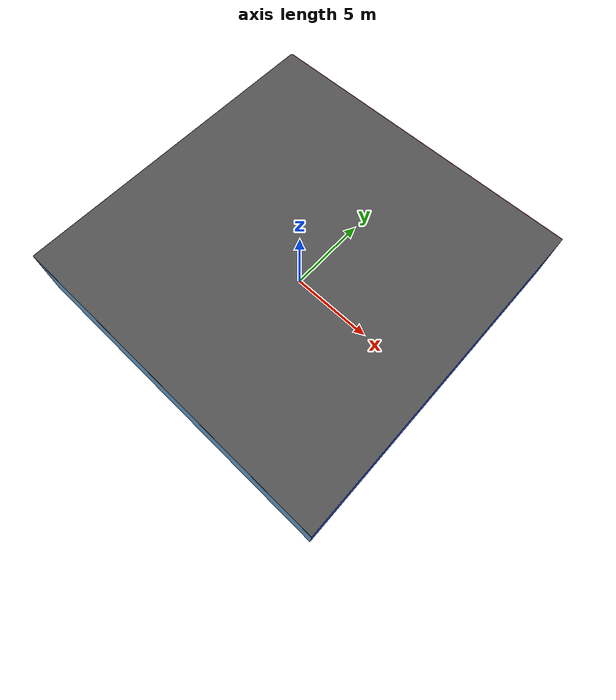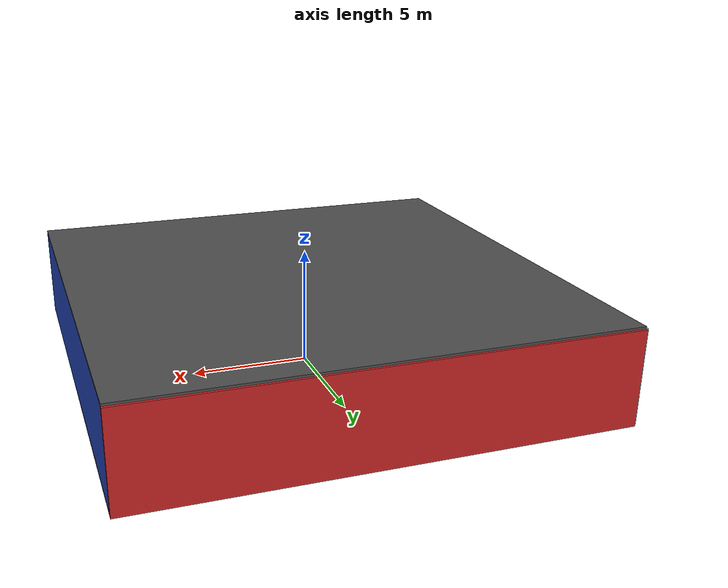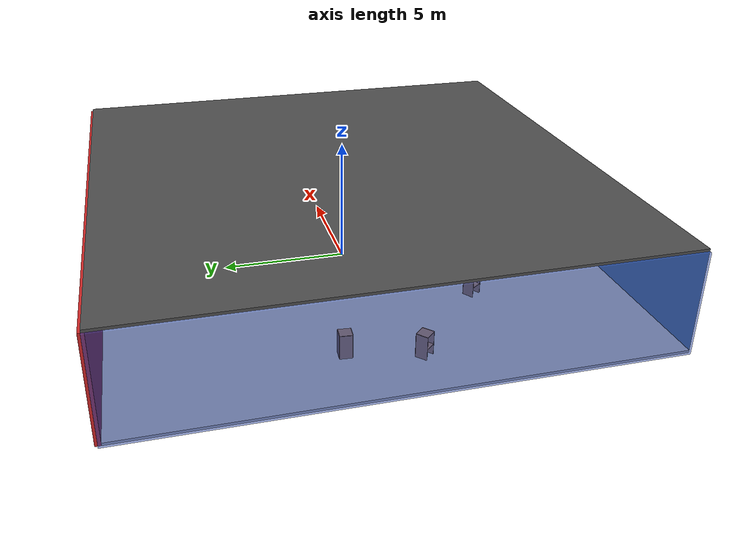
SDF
<sdf version="1.4">
 <world name="default">
  <physics type="ode">
   <max_step_size>0.001</max_step_size>
   <real_time_factor>1</real_time_factor>
   <real_time_update_rate>1000</real_time_update_rate>
   <gravity>0 0 -9.8</gravity>
  </physics>
  <scene><ambient>0.4 0.4 0.4 1</ambient><background>0.7 0.7 0.7 1</background><shadows>1</shadows></scene>
  <model name="Surrounding">
   <static>1</static>
   <link name="Ceiling">
    <collision name="Ceiling_Collision"><geometry><box><size>20 20 0.1</size></box></geometry></collision>
    <visual name="Ceiling_Visual">
     <geometry><box><size>20 20 0.1</size></box></geometry>
     <material>
      <script><uri>file://media/materials/scripts/gazebo.material</uri><name>Gazebo/DarkGrey</name></script>
     </material>
    </visual>
    <pose>0 0 4.05 0 0 0</pose>
   </link>
   <link name="Wall_South">
    <collision name="Wall_South_Collision">
     <geometry><box><size>20 0 4</size></box></geometry>
     <pose>0 0 2 0 -0 0</pose>
    </collision>
    <visual name="Wall_South_Visual">
     <pose>0 0 2 0 -0 0</pose>
     <geometry><box><size>20 0 4</size></box></geometry>
     <material>
      <script><uri>file://media/materials/scripts/gazebo.material</uri><name>Gazebo/SkyBlue</name></script>
     </material>
    </visual>
    <velocity_decay><linear>0</linear><angular>0</angular></velocity_decay>
    <pose>0 -10 0 0 -0 0</pose>
   </link>
   <link name="Wall_East">
    <collision name="Wall_21_Collision">
     <geometry><box><size>20 0 4</size></box></geometry>
     <pose>0 0 2 0 -0 0</pose>
    </collision>
    <visual name="Wall_21_Visual">
     <pose>0 0 2 0 -0 0</pose>
     <geometry><box><size>20 0 4</size></box></geometry>
     <material>
      <script><uri>file://media/materials/scripts/gazebo.material</uri><name>Gazebo/Blue</name></script>
     </material>
    </visual>
    <velocity_decay><linear>0</linear><angular>0</angular></velocity_decay>
    <pose>10 0 0 0 -0 1.5708</pose>
   </link>
   <link name="Wall_North">
    <collision name="Wall_22_Collision">
     <geometry><box><size>20 0.2 4</size></box></geometry>
     <pose>0 0 2 0 -0 0</pose>
    </collision>
    <visual name="Wall_22_Visual">
     <pose>0 0 2 0 -0 0</pose>
     <geometry><box><size>20 0.2 4</size></box></geometry>
     <material>
      <script><uri>file://media/materials/scripts/gazebo.material</uri><name>Gazebo/RedGlow</name></script>
     </material>
    </visual>
    <velocity_decay><linear>0</linear><angular>0</angular></velocity_decay>
    <pose>0 10 0 0 -0 0</pose>
   </link>
   <link name="Wall_West">
    <collision name="Wall_23_Collision">
     <geometry><box><size>20 0.2 4</size></box></geometry>
     <pose>0 0 2 0 -0 0</pose>
    </collision>
    <visual name="Wall_23_Visual">
     <pose>0 0 2 0 -0 0</pose>
     <geometry><box><size>20 0.2 4</size></box></geometry>
     <material>
      <script><uri>file://media/materials/scripts/gazebo.material</uri><name>Gazebo/BlueTransparent</name></script>
     </material>
    </visual>
    <velocity_decay><linear>0</linear><angular>0</angular></velocity_decay>
    <pose>-10 0 0 0 0 -1.5708</pose>
   </link>
   <link name="Ground_link">
    <collision name="collision">
     <pose>0 0 .05 0 -0 0</pose>
     <geometry><box><size>20 20 0.1</size></box></geometry>
    </collision>
    <visual name="visual">
     <pose>0 0 .05 0 -0 0</pose>
     <geometry><box><size>20 20 0.1</size></box></geometry>
     <material>
      <script><uri>file://media/materials/scripts/gazebo.material</uri><name>Gazebo/PaintedWall</name></script>
     </material>
    </visual>
   </link>
   <static>1</static>
  </model>
  <spherical_coordinates>
   <surface_model>EARTH_WGS84</surface_model>
   <latitude_deg>0</latitude_deg>
   <longitude_deg>0</longitude_deg>
   <elevation>0</elevation>
   <heading_deg>0</heading_deg>
  </spherical_coordinates>
  <light name="lightball_0" type="diffuse">
   <diffuse>0.8 0.8 0.8 1</diffuse>
   <specular>0.2 0.2 0.2 1</specular>
   <attenuation>
    <range>100</range>
    <constant>0.7</constant>
    <linear>0.01</linear>
    <quadratic>0.001</quadratic>
   </attenuation>
   <direction>-0.5 0.1 -0.9</direction>
   <pose>-5.25952180816 -3.3404158866 1.46802143323 0 0 0</pose>
  </light>
  <light name="lightball_1" type="diffuse">
   <diffuse>0.8 0.8 0.8 1</diffuse>
   <specular>0.2 0.2 0.2 1</specular>
   <attenuation>
    <range>100</range>
    <constant>0.7</constant>
    <linear>0.01</linear>
    <quadratic>0.001</quadratic>
   </attenuation>
   <direction>-0.5 0.1 -0.9</direction>
   <pose>-8.94820444115 3.80014821507 2.13387004893 0 0 0</pose>
  </light>
  <light name="lightball_2" type="diffuse">
   <diffuse>0.8 0.8 0.8 1</diffuse>
   <specular>0.2 0.2 0.2 1</specular>
   <attenuation>
    <range>100</range>
    <constant>0.7</constant>
    <linear>0.01</linear>
    <quadratic>0.001</quadratic>
   </attenuation>
   <direction>-0.5 0.1 -0.9</direction>
   <pose>8.55727896196 -8.76297881984 3.7655737065 0 0 0</pose>
  </light>
  <light name="lightball_3" type="diffuse">
   <diffuse>0.8 0.8 0.8 1</diffuse>
   <specular>0.2 0.2 0.2 1</specular>
   <attenuation>
    <range>100</range>
    <constant>0.7</constant>
    <linear>0.01</linear>
    <quadratic>0.001</quadratic>
   </attenuation>
   <direction>-0.5 0.1 -0.9</direction>
   <pose>7.12351433354 4.21336690362 2.96594659207 0 0 0</pose>
  </light>
  <light name="lightball_4" type="diffuse">
   <diffuse>0.8 0.8 0.8 1</diffuse>
   <specular>0.2 0.2 0.2 1</specular>
   <attenuation>
    <range>100</range>
    <constant>0.7</constant>
    <linear>0.01</linear>
    <quadratic>0.001</quadratic>
   </attenuation>
   <direction>-0.5 0.1 -0.9</direction>
   <pose>0.696442773492 -4.96745610151 2.46198529303 0 0 0</pose>
  </light>
  <include><uri>model://cabinet</uri><pose>-8.04249871045 -0.91665277147 0 0 0 0.759480877631</pose></include>
  <include><uri>model://cabinet</uri><pose>-7.35561785739 1.73862634436 0 0 0 3.06483802269</pose></include>
  <include><uri>model://cabinet</uri><pose>-4.51494362545 -4.06363907877 0 0 0 0.602842743101</pose></include>
  <include>
   <uri>model://robocup_3Dsim_goal</uri>
   <pose>4.9220885317 -8.02854090459 0 0 0 0.606331973004</pose>
  </include>
  <include><uri>model://cabinet</uri><pose>5.19996366346 -2.14315389039 0 0 0 1.43407074242</pose></include>
  <include>
   <uri>model://textured_shapes</uri>
   <pose>4.77866558929 4.269229676 0 0 0 1.56777820184</pose>
  </include>
  <include>
   <uri>model://construction_cone</uri>
   <pose>7.79711454206 -7.19261373776 0 0 0 0.300454051343</pose>
  </include>
  <include><uri>model://cabinet</uri><pose>7.50323429032 -1.30415026714 0 0 0 1.16459644053</pose></include>
 </world>
</sdf>

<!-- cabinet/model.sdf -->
<sdf version="1.5">
  <model name="cabinet">
    <static>true</static>
    <link name="cabinet_bottom_plate">
      <inertial>
        <pose>0 0 -1 0 0 0</pose>
        <inertia>
          <ixx>2.050000</ixx>
          <ixy>0</ixy>
          <ixz>0</ixz>
          <iyy>2.050000</iyy>
          <iyz>0</iyz>
          <izz>2.050000</izz>
        </inertia>
        <mass>25.000000</mass>
      </inertial>
      <collision name="cabinet_bottom_plate_geom">
        <pose>0 0 0.010000 0 0 0</pose>
        <geometry>
          <box>
            <size>0.450000 0.450000 0.020000</size>
          </box>
        </geometry>
      </collision>
      <visual name="cabinet_bottom_plate_geom_visual">
        <pose>0 0 0.010000 0 0 0</pose>
        <geometry>
          <box>
            <size>0.450000 0.450000 0.020000</size>
          </box>
        </geometry>
        <material>
          <script>
            <uri>model://media/materials/scripts/gazebo.material</uri>
            <name>Gazebo/Wood</name>
          </script>
        </material>
      </visual>
      <collision name="cabinet_bottom_plate_geom_cabinet_back_plate">
        <pose>0.235000 0 0.510000 0 0 0</pose>
        <geometry>
          <box>
            <size>0.020000 0.450000 1.020000</size>
          </box>
        </geometry>
      </collision>
      <visual name="cabinet_bottom_plate_geom_cabinet_back_plate_visual">
        <pose>0.235000 0 0.510000 0 0 0</pose>
        <geometry>
          <box>
            <size>0.020000 0.450000 1.020000</size>
          </box>
        </geometry>
        <material>
          <script>
            <uri>model://media/materials/scripts/gazebo.material</uri>
            <name>Gazebo/Wood</name>
          </script>
        </material>
      </visual>
      <collision name="cabinet_bottom_plate_geom_cabinet_left_plate">
        <pose>0 0.235000 0.510000 0 0 0</pose>
        <geometry>
          <box>
            <size>0.450000 0.020000 1.020000</size>
          </box>
        </geometry>
      </collision>
      <visual name="cabinet_bottom_plate_geom_cabinet_left_plate_visual">
        <pose>0 0.235000 0.510000 0 0 0</pose>
        <geometry>
          <box>
            <size>0.450000 0.020000 1.020000</size>
          </box>
        </geometry>
        <material>
          <script>
            <uri>model://media/materials/scripts/gazebo.material</uri>
            <name>Gazebo/Wood</name>
          </script>
        </material>
      </visual>
      <collision name="cabinet_bottom_plate_geom_cabinet_middle_plate">
        <pose>0 0 0.510000 0 0 0</pose>
        <geometry>
          <box>
            <size>0.450000 0.450000 0.020000</size>
          </box>
        </geometry>
      </collision>
      <visual name="cabinet_bottom_plate_geom_cabinet_middle_plate_visual">
        <pose>0 0 0.510000 0 0 0</pose>
        <geometry>
          <box>
            <size>0.450000 0.450000 0.020000</size>
          </box>
        </geometry>
        <material>
          <script>
            <uri>model://media/materials/scripts/gazebo.material</uri>
            <name>Gazebo/Wood</name>
          </script>
        </material>
      </visual>
      <collision name="cabinet_bottom_plate_geom_cabinet_right_plate">
        <pose>0 -0.235000 0.510000 0 0 0</pose>
        <geometry>
          <box>
            <size>0.450000 0.020000 1.020000</size>
          </box>
        </geometry>
      </collision>
      <visual name="cabinet_bottom_plate_geom_cabinet_right_plate_visual">
        <pose>0 -0.235000 0.510000 0 0 0</pose>
        <geometry>
          <box>
            <size>0.450000 0.020000 1.020000</size>
          </box>
        </geometry>
        <material>
          <script>
            <uri>model://media/materials/scripts/gazebo.material</uri>
            <name>Gazebo/Wood</name>
          </script>
        </material>
      </visual>
      <collision name="cabinet_bottom_plate_geom_cabinet_top_plate">
        <pose>0 0 1.010000 0 0 0</pose>
        <geometry>
          <box>
            <size>0.450000 0.450000 0.020000</size>
          </box>
        </geometry>
      </collision>
      <visual name="cabinet_bottom_plate_geom_cabinet_top_plate_visual">
        <pose>0 0 1.010000 0 0 0</pose>
        <geometry>
          <box>
            <size>0.450000 0.450000 0.020000</size>
          </box>
        </geometry>
        <material>
          <script>
            <uri>model://media/materials/scripts/gazebo.material</uri>
            <name>Gazebo/Wood</name>
          </script>
        </material>
      </visual>
    </link>
  </model>
</sdf>

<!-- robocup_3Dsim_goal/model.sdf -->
<sdf version="1.5">
  <model name="robocup_3d_goal">
    <static>true</static>
    <link name="left_post">
      <pose>0 1.05 0.45 0 0 0</pose>
      <collision name="collision">
        <geometry>
          <cylinder>
            <radius>0.05</radius>
            <length>0.9</length>
          </cylinder>
        </geometry>
      </collision>
      <visual name="visual">
        <geometry>
          <cylinder>
            <radius>0.05</radius>
            <length>0.9</length>
          </cylinder>
        </geometry>
        <material>
          <script>
            <uri>file://media/materials/scripts/gazebo.material</uri>
            <name>Gazebo/ZincYellow</name>
          </script>
        </material>
      </visual>
    </link>
    <link name="left_support_horiz_lower">
      <pose>0.30 1.05 0.01 0 0 0</pose>
      <collision name="collision">
        <geometry>
          <box>
            <size>0.50 0.02 0.02</size>
          </box>
        </geometry>
      </collision>
      <visual name="visual">
        <geometry>
          <box>
            <size>0.50 0.02 0.02</size>
          </box>
        </geometry>
        <material>
          <script>
            <uri>file://media/materials/scripts/gazebo.material</uri>
            <name>Gazebo/White</name>
          </script>
        </material>
      </visual>
    </link>
    <link name="left_support_horiz_upper">
      <pose>0.30 1.05 0.79 0 0 0</pose>
      <collision name="collision">
        <geometry>
          <box>
            <size>0.50 0.02 0.02</size>
          </box>
        </geometry>
      </collision>
      <visual name="visual">
        <geometry>
          <box>
            <size>0.50 0.02 0.02</size>
          </box>
        </geometry>
        <material>
          <script>
            <uri>file://media/materials/scripts/gazebo.material</uri>
            <name>Gazebo/White</name>
          </script>
        </material>
      </visual>
    </link>
    <link name="left_support_vertical">
      <pose>0.56 1.05 0.4 0 1.5708 0</pose>
      <collision name="collision">
        <geometry>
          <box>
            <size>0.80 0.02 0.02</size>
          </box>
        </geometry>
      </collision>
      <visual name="visual">
        <geometry>
          <box>
            <size>0.80 0.02 0.02</size>
          </box>
        </geometry>
        <material>
          <script>
            <uri>file://media/materials/scripts/gazebo.material</uri>
            <name>Gazebo/White</name>
          </script>
        </material>
      </visual>
    </link>
    <link name="right_support_horiz_lower">
      <pose>0.30 -1.05 0.01 0 0 0</pose>
      <collision name="collision">
        <geometry>
          <box>
            <size>0.50 0.02 0.02</size>
          </box>
        </geometry>
      </collision>
      <visual name="visual">
        <geometry>
          <box>
            <size>0.50 0.02 0.02</size>
          </box>
        </geometry>
        <material>
          <script>
            <uri>file://media/materials/scripts/gazebo.material</uri>
            <name>Gazebo/White</name>
          </script>
        </material>
      </visual>
    </link>
    <link name="right_support_horiz_upper">
      <pose>0.30 -1.05 0.79 0 0 0</pose>
      <collision name="collision">
        <geometry>
          <box>
            <size>0.50 0.02 0.02</size>
          </box>
        </geometry>
      </collision>
      <visual name="visual">
        <geometry>
          <box>
            <size>0.50 0.02 0.02</size>
          </box>
        </geometry>
        <material>
          <script>
            <uri>file://media/materials/scripts/gazebo.material</uri>
            <name>Gazebo/White</name>
          </script>
        </material>
      </visual>
    </link>
    <link name="right_support_vertical">
      <pose>0.56 -1.05 0.4 0 1.5708 0</pose>
      <collision name="collision">
        <geometry>
          <box>
            <size>0.80 0.02 0.02</size>
          </box>
        </geometry>
      </collision>
      <visual name="visual">
        <geometry>
          <box>
            <size>0.80 0.02 0.02</size>
          </box>
        </geometry>
        <material>
          <script>
            <uri>file://media/materials/scripts/gazebo.material</uri>
            <name>Gazebo/White</name>
          </script>
        </material>
      </visual>
    </link>
    <link name="center_support_horiz_lower">
      <pose>0.56 0 0.01 0 1.5708 0</pose>
      <collision name="collision">
        <geometry>
          <box>
            <size>0.02 2.08 0.02</size>
          </box>
        </geometry>
      </collision>
      <visual name="visual">
        <geometry>
          <box>
            <size>0.02 2.08 0.02</size>
          </box>
        </geometry>
        <material>
          <script>
            <uri>file://media/materials/scripts/gazebo.material</uri>
            <name>Gazebo/White</name>
          </script>
        </material>
      </visual>
    </link>
    <link name="center_support_horiz_upper">
      <pose>0.56 0 0.79 0 1.5708 0</pose>
      <collision name="collision">
        <geometry>
          <box>
            <size>0.02 2.08 0.02</size>
          </box>
        </geometry>
      </collision>
      <visual name="visual">
        <geometry>
          <box>
            <size>0.02 2.08 0.02</size>
          </box>
        </geometry>
        <material>
          <script>
            <uri>file://media/materials/scripts/gazebo.material</uri>
            <name>Gazebo/White</name>
          </script>
        </material>
      </visual>
    </link>
    <link name="right_post">
      <pose>0 -1.05 0.45 0 0 0</pose>
      <collision name="collision">
        <geometry>
          <cylinder>
            <radius>0.05</radius>
            <length>0.9</length>
          </cylinder>
        </geometry>
      </collision>
      <visual name="visual">
        <geometry>
          <cylinder>
            <radius>0.05</radius>
            <length>0.9</length>
          </cylinder>
        </geometry>
        <material>
          <script>
            <uri>file://media/materials/scripts/gazebo.material</uri>
            <name>Gazebo/ZincYellow</name>
          </script>
        </material>
      </visual>
    </link>
    <link name="crossbar">
      <pose>0 0 0.85 1.57 1.57 0</pose>
      <collision name="collision">
        <geometry>
          <cylinder>
            <radius>0.05</radius>
            <length>2.0</length>
          </cylinder>
        </geometry>
      </collision>
      <visual name="visual">
        <geometry>
          <cylinder>
            <radius>0.05</radius>
            <length>2.0</length>
          </cylinder>
        </geometry>
        <material>
          <script>
            <uri>file://media/materials/scripts/gazebo.material</uri>
            <name>Gazebo/ZincYellow</name>
          </script>
        </material>
      </visual>
    </link>
    <link name="center_net">
      <pose>0.56 0 0.40 0 0 0</pose>
      <collision name="collision">
        <geometry>
          <box>
            <size>0.01 2.1 0.80</size>
          </box>
        </geometry>
      </collision>
      <visual name="visual">
        <geometry>
          <box>
            <size>0.01 2.1 0.80</size>
          </box>
        </geometry>
        <material>
          <script>
            <uri>model://../model_source/models/robocup09_spl_field/materials/scripts/</uri>
            <uri>model://../model_source/models/robocup09_spl_field/materials/textures/</uri>
            <name>RoboCup/Net</name>
          </script>
        </material>
      </visual>
    </link>
    <link name="left_net">
      <pose>0.30 1.05 0.40 0 0 0</pose>
      <collision name="collision">
        <geometry>
          <box>
            <size>0.50 0.01 0.76</size>
          </box>
        </geometry>
      </collision>
      <visual name="visual">
        <geometry>
          <box>
            <size>0.50 0.01 0.76</size>
          </box>
        </geometry>
        <material>
          <script>
            <uri>model://../model_source/models/robocup09_spl_field/materials/scripts/</uri>
            <uri>model://../model_source/models/robocup09_spl_field/materials/textures/</uri>
            <name>RoboCup/Net</name>
          </script>
        </material>
      </visual>
    </link>
    <link name="right_net">
      <pose>0.30 -1.05 0.40 0 0 0</pose>
      <collision name="collision">
        <geometry>
          <box>
            <size>0.50 0.01 0.76</size>
          </box>
        </geometry>
      </collision>
      <visual name="visual">
        <geometry>
          <box>
            <size>0.50 0.01 0.76</size>
          </box>
        </geometry>
        <material>
          <script>
            <uri>model://../model_source/models/robocup09_spl_field/materials/scripts/</uri>
            <uri>model://../model_source/models/robocup09_spl_field/materials/textures/</uri>
            <name>RoboCup/Net</name>
          </script>
        </material>
      </visual>
    </link>
  </model>
</sdf>

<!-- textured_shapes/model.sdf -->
<sdf version="1.6">
  <model name="textured_shapes">
    <pose>0 0 0.5 0 0 0</pose>
    <link name="box">
      <pose>0 -1.5 0 0 0 0</pose>
      <collision name="collision">
        <geometry>
          <box>
            <size>1 1 1</size>
          </box>
        </geometry>
      </collision>
      <visual name="visual">
        <geometry>
          <box>
            <size>1 1 1</size>
          </box>
        </geometry>
        <material>
          <script>
            <uri>model://../model_source/models/textured_shapes/materials/scripts</uri>
            <uri>model://../model_source/models/textured_shapes/materials/textures</uri>
            <name>TexturedShape/Squares</name>
          </script>
        </material>
      </visual>
    </link>
    <link name="sphere">
      <collision name="collision">
        <geometry>
          <sphere>
            <radius>0.5</radius>
          </sphere>
        </geometry>
      </collision>
      <visual name="visual">
        <geometry>
          <sphere>
            <radius>0.5</radius>
          </sphere>
        </geometry>
        <material>
          <script>
            <uri>model://../model_source/models/textured_shapes/materials/scripts</uri>
            <uri>model://../model_source/models/textured_shapes/materials/textures</uri>
            <name>TexturedShape/Squares</name>
          </script>
        </material>
      </visual>
    </link>
    <link name="cylinder">
      <pose>0 1.5 0 0 0 0</pose>
      <collision name="collision">
        <geometry>
          <cylinder>
            <radius>0.5</radius>
            <length>1</length>
          </cylinder>
        </geometry>
      </collision>
      <visual name="visual">
        <geometry>
          <cylinder>
            <radius>0.5</radius>
            <length>1</length>
          </cylinder>
        </geometry>
        <material>
          <script>
            <uri>model://../model_source/models/textured_shapes/materials/scripts</uri>
            <uri>model://../model_source/models/textured_shapes/materials/textures</uri>
            <name>TexturedShape/Squares</name>
          </script>
        </material>
      </visual>
    </link>
  </model>
</sdf>

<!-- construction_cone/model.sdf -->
<sdf version="1.5">
  <model name="Construction Cone">
    <link name="link">
      <collision name="collision">
        <geometry>
          <mesh>
            <scale>10 10 10</scale>
            <uri>file://isr-testbed/construction_cone/meshes/construction_cone.dae</uri>
          </mesh>
        </geometry>
      </collision>
      <visual name="visual">
        <geometry>
          <mesh>
            <scale>10 10 10</scale>
            <uri>file://isr-testbed/construction_cone/meshes/construction_cone.dae</uri>
          </mesh>
        </geometry>
      </visual>
    </link>
  </model>
</sdf>
